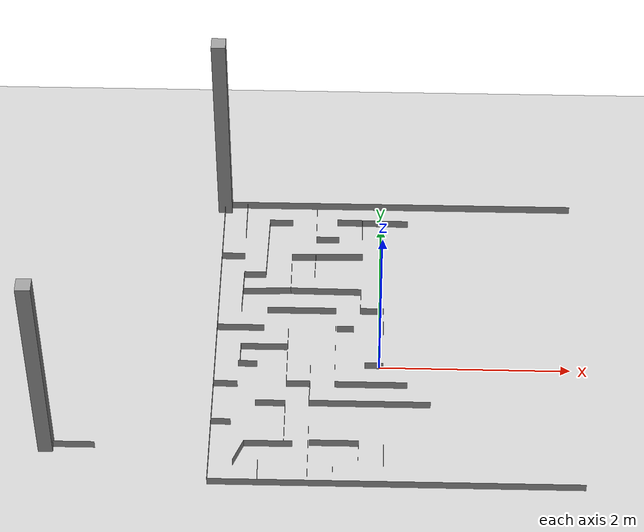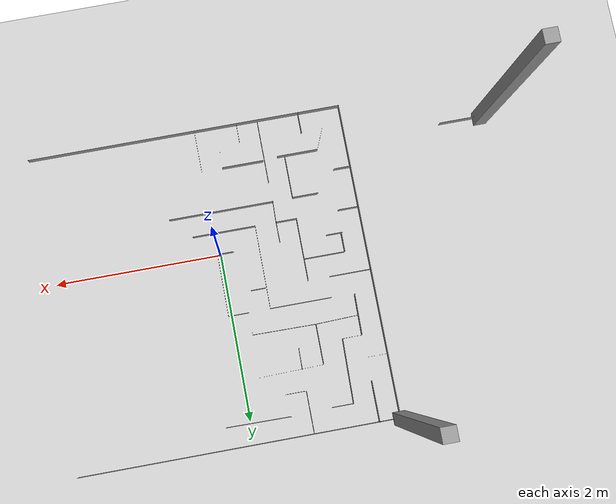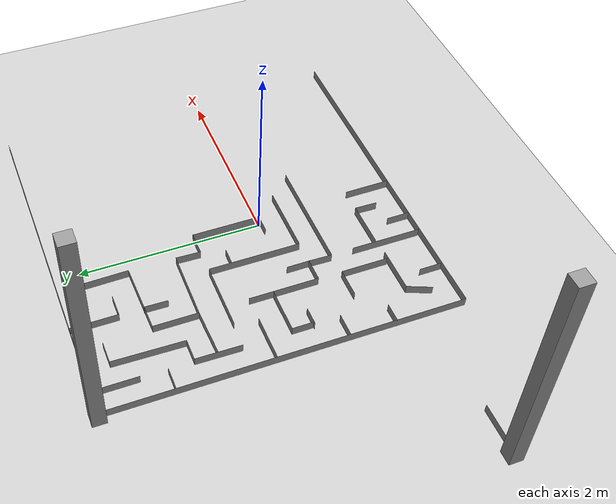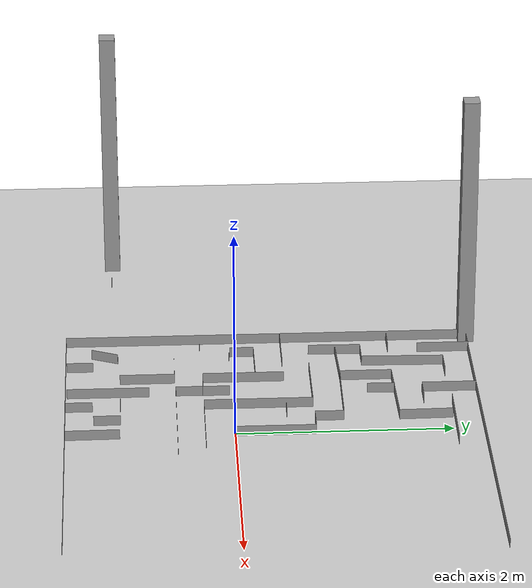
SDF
<sdf version="1.7">
 <world name="default">
  <model name="ground_plane">
   <static>1</static>
   <link name="link">
    <collision name="collision">
     <geometry><plane><normal>0 0 1</normal><size>100 100</size></plane></geometry>
     <surface>
      <contact><collide_bitmask>65535</collide_bitmask></contact>
      <friction><ode><mu>100</mu><mu2>50</mu2></ode></friction>
     </surface>
    </collision>
    <visual name="visual">
     <cast_shadows>0</cast_shadows>
     <geometry><plane><normal>0 0 1</normal><size>100 100</size></plane></geometry>
     <material>
      <script><uri>file://media/materials/scripts/gazebo.material</uri><name>Gazebo/Grey</name></script>
     </material>
    </visual>
   </link>
  </model>
  <model name="Untitled">
   <pose>-0.693629 0.396873 0 0 -0 0</pose>
   <link name="Wall_0">
    <collision name="Wall_0_Collision">
     <geometry><box><size>3.825 0 0.1</size></box></geometry>
     <pose>0 0 0.05 0 -0 0</pose>
    </collision>
    <visual name="Wall_0_Visual">
     <pose>0 0 0.05 0 -0 0</pose>
     <geometry><box><size>3.825 0 0.1</size></box></geometry>
     <material>
      <script><uri>file://media/materials/scripts/gazebo.material</uri><name>Gazebo/Grey</name></script>
      <ambient>1 1 1 1</ambient>
     </material>
     <meta><layer>0</layer></meta>
    </visual>
    <pose>0.872261 -1.94891 0 0 -0 0</pose>
   </link>
   <link name="Wall_115">
    <collision name="Wall_115_Collision">
     <geometry><box><size>0.778287 0 0.1</size></box></geometry>
     <pose>0 0 0.05 0 -0 0</pose>
    </collision>
    <visual name="Wall_115_Visual">
     <pose>0 0 0.05 0 -0 0</pose>
     <geometry><box><size>0.778287 0 0.1</size></box></geometry>
     <material>
      <script><uri>file://media/materials/scripts/gazebo.material</uri><name>Gazebo/Grey</name></script>
      <ambient>1 1 1 1</ambient>
     </material>
     <meta><layer>0</layer></meta>
    </visual>
    <pose>0.600381 1.62631 0 0 -0 3.13002</pose>
   </link>
   <link name="Wall_117">
    <collision name="Wall_117_Collision">
     <geometry><box><size>0.493111 0 0.1</size></box></geometry>
     <pose>0 0 0.05 0 -0 0</pose>
    </collision>
    <visual name="Wall_117_Visual">
     <pose>0 0 0.05 0 -0 0</pose>
     <geometry><box><size>0.493111 0 0.1</size></box></geometry>
     <material>
      <script><uri>file://media/materials/scripts/gazebo.material</uri><name>Gazebo/Grey</name></script>
      <ambient>1 1 1 1</ambient>
     </material>
     <meta><layer>0</layer></meta>
    </visual>
    <pose>0.491881 1.36731 0 0 -0 -1.55254</pose>
   </link>
   <link name="Wall_118">
    <collision name="Wall_118_Collision">
     <geometry><box><size>0.769188 0 0.1</size></box></geometry>
     <pose>0 0 0.05 0 -0 0</pose>
    </collision>
    <visual name="Wall_118_Visual">
     <pose>0 0 0.05 0 -0 0</pose>
     <geometry><box><size>0.769188 0 0.1</size></box></geometry>
     <material>
      <script><uri>file://media/materials/scripts/gazebo.material</uri><name>Gazebo/Grey</name></script>
      <ambient>1 1 1 1</ambient>
     </material>
     <meta><layer>0</layer></meta>
    </visual>
    <pose>0.111881 1.11231 0 0 -0 -3.11949</pose>
   </link>
   <link name="Wall_119">
    <collision name="Wall_119_Collision">
     <geometry><box><size>0.484527 0 0.1</size></box></geometry>
     <pose>0 0 0.05 0 -0 0</pose>
    </collision>
    <visual name="Wall_119_Visual">
     <pose>0 0 0.05 0 -0 0</pose>
     <geometry><box><size>0.484527 0 0.1</size></box></geometry>
     <material>
      <script><uri>file://media/materials/scripts/gazebo.material</uri><name>Gazebo/Grey</name></script>
      <ambient>1 1 1 1</ambient>
     </material>
     <meta><layer>0</layer></meta>
    </visual>
    <pose>-0.272619 0.861312 0 0 -0 -1.5708</pose>
   </link>
   <link name="Wall_120">
    <collision name="Wall_120_Collision">
     <geometry><box><size>0.7605 0 0.1</size></box></geometry>
     <pose>0 0 0.05 0 -0 0</pose>
    </collision>
    <visual name="Wall_120_Visual">
     <pose>0 0 0.05 0 -0 0</pose>
     <geometry><box><size>0.7605 0 0.1</size></box></geometry>
     <material>
      <script><uri>file://media/materials/scripts/gazebo.material</uri><name>Gazebo/Grey</name></script>
      <ambient>1 1 1 1</ambient>
     </material>
     <meta><layer>0</layer></meta>
    </visual>
    <pose>0.107381 0.614812 0 0 -0 -0.010526</pose>
   </link>
   <link name="Wall_121">
    <collision name="Wall_121_Collision">
     <geometry><box><size>0.268341 0 0.1</size></box></geometry>
     <pose>0 0 0.05 0 -0 0</pose>
    </collision>
    <visual name="Wall_121_Visual">
     <pose>0 0 0.05 0 -0 0</pose>
     <geometry><box><size>0.268341 0 0.1</size></box></geometry>
     <material>
      <script><uri>file://media/materials/scripts/gazebo.material</uri><name>Gazebo/Grey</name></script>
      <ambient>1 1 1 1</ambient>
     </material>
     <meta><layer>0</layer></meta>
    </visual>
    <pose>0.483381 0.476812 0 0 -0 -1.60064</pose>
   </link>
   <link name="Wall_122">
    <collision name="Wall_122_Collision">
     <geometry><box><size>0.25056 0 0.1</size></box></geometry>
     <pose>0 0 0.05 0 -0 0</pose>
    </collision>
    <visual name="Wall_122_Visual">
     <pose>0 0 0.05 0 -0 0</pose>
     <geometry><box><size>0.25056 0 0.1</size></box></geometry>
     <material>
      <script><uri>file://media/materials/scripts/gazebo.material</uri><name>Gazebo/Grey</name></script>
      <ambient>1 1 1 1</ambient>
     </material>
     <meta><layer>0</layer></meta>
    </visual>
    <pose>0.604881 0.342812 0 0 -0 0</pose>
   </link>
   <link name="Wall_123">
    <collision name="Wall_123_Collision">
     <geometry><box><size>0.752467 0 0.1</size></box></geometry>
     <pose>0 0 0.05 0 -0 0</pose>
    </collision>
    <visual name="Wall_123_Visual">
     <pose>0 0 0.05 0 -0 0</pose>
     <geometry><box><size>0.752467 0 0.1</size></box></geometry>
     <material>
      <script><uri>file://media/materials/scripts/gazebo.material</uri><name>Gazebo/Grey</name></script>
      <ambient>1 1 1 1</ambient>
     </material>
     <meta><layer>0</layer></meta>
    </visual>
    <pose>0.730381 -0.033188 0 0 -0 -1.5708</pose>
   </link>
   <link name="Wall_125">
    <collision name="Wall_125_Collision">
     <geometry><box><size>0.492984 0 0.1</size></box></geometry>
     <pose>0 0 0.05 0 -0 0</pose>
    </collision>
    <visual name="Wall_125_Visual">
     <pose>0 0 0.05 0 -0 0</pose>
     <geometry><box><size>0.492984 0 0.1</size></box></geometry>
     <material>
      <script><uri>file://media/materials/scripts/gazebo.material</uri><name>Gazebo/Grey</name></script>
      <ambient>1 1 1 1</ambient>
     </material>
     <meta><layer>0</layer></meta>
    </visual>
    <pose>-0.791619 1.63531 0 0 -0 -1.5708</pose>
   </link>
   <link name="Wall_127">
    <collision name="Wall_127_Collision">
     <geometry><box><size>0.250837 0 0.1</size></box></geometry>
     <pose>0 0 0.05 0 -0 0</pose>
    </collision>
    <visual name="Wall_127_Visual">
     <pose>0 0 0.05 0 -0 0</pose>
     <geometry><box><size>0.250837 0 0.1</size></box></geometry>
     <material>
      <script><uri>file://media/materials/scripts/gazebo.material</uri><name>Gazebo/Grey</name></script>
      <ambient>1 1 1 1</ambient>
     </material>
     <meta><layer>0</layer></meta>
    </visual>
    <pose>-0.407119 1.61381 0 0 -0 3.14159</pose>
   </link>
   <link name="Wall_128">
    <collision name="Wall_128_Collision">
     <geometry><box><size>0.769907 0 0.1</size></box></geometry>
     <pose>0 0 0.05 0 -0 0</pose>
    </collision>
    <visual name="Wall_128_Visual">
     <pose>0 0 0.05 0 -0 0</pose>
     <geometry><box><size>0.769907 0 0.1</size></box></geometry>
     <material>
      <script><uri>file://media/materials/scripts/gazebo.material</uri><name>Gazebo/Grey</name></script>
      <ambient>1 1 1 1</ambient>
     </material>
     <meta><layer>0</layer></meta>
    </visual>
    <pose>-0.541119 1.22881 0 0 -0 -1.59287</pose>
   </link>
   <link name="Wall_129">
    <collision name="Wall_129_Collision">
     <geometry><box><size>0.233587 0 0.1</size></box></geometry>
     <pose>0 0 0.05 0 -0 0</pose>
    </collision>
    <visual name="Wall_129_Visual">
     <pose>0 0 0.05 0 -0 0</pose>
     <geometry><box><size>0.233587 0 0.1</size></box></geometry>
     <material>
      <script><uri>file://media/materials/scripts/gazebo.material</uri><name>Gazebo/Grey</name></script>
      <ambient>1 1 1 1</ambient>
     </material>
     <meta><layer>0</layer></meta>
    </visual>
    <pose>-0.666619 0.843812 0 0 -0 3.14159</pose>
   </link>
   <link name="Wall_130">
    <collision name="Wall_130_Collision">
     <geometry><box><size>0.493065 0 0.1</size></box></geometry>
     <pose>0 0 0.05 0 -0 0</pose>
    </collision>
    <visual name="Wall_130_Visual">
     <pose>0 0 0.05 0 -0 0</pose>
     <geometry><box><size>0.493065 0 0.1</size></box></geometry>
     <material>
      <script><uri>file://media/materials/scripts/gazebo.material</uri><name>Gazebo/Grey</name></script>
      <ambient>1 1 1 1</ambient>
     </material>
     <meta><layer>0</layer></meta>
    </visual>
    <pose>-0.787619 0.597312 0 0 -0 -1.58702</pose>
   </link>
   <link name="Wall_132">
    <collision name="Wall_132_Collision">
     <geometry><box><size>0.256182 0 0.1</size></box></geometry>
     <pose>0 0 0.05 0 -0 0</pose>
    </collision>
    <visual name="Wall_132_Visual">
     <pose>0 0 0.05 0 -0 0</pose>
     <geometry><box><size>0.256182 0 0.1</size></box></geometry>
     <material>
      <script><uri>file://media/materials/scripts/gazebo.material</uri><name>Gazebo/Grey</name></script>
      <ambient>1 1 1 1</ambient>
     </material>
     <meta><layer>0</layer></meta>
    </visual>
    <pose>-0.017119 0.985812 0 0 -0 -1.59032</pose>
   </link>
   <link name="Wall_142">
    <collision name="Wall_142_Collision">
     <geometry><box><size>0.510251 0 0.1</size></box></geometry>
     <pose>0 0 0.05 0 -0 0</pose>
    </collision>
    <visual name="Wall_142_Visual">
     <pose>0 0 0.05 0 -0 0</pose>
     <geometry><box><size>0.510251 0 0.1</size></box></geometry>
     <material>
      <script><uri>file://media/materials/scripts/gazebo.material</uri><name>Gazebo/Grey</name></script>
      <ambient>1 1 1 1</ambient>
     </material>
     <meta><layer>0</layer></meta>
    </visual>
    <pose>-0.527619 0.610812 0 0 -0 0.031362</pose>
   </link>
   <link name="Wall_144">
    <collision name="Wall_144_Collision">
     <geometry><box><size>0.759621 0 0.1</size></box></geometry>
     <pose>0 0 0.05 0 -0 0</pose>
    </collision>
    <visual name="Wall_144_Visual">
     <pose>0 0 0.05 0 -0 0</pose>
     <geometry><box><size>0.759621 0 0.1</size></box></geometry>
     <material>
      <script><uri>file://media/materials/scripts/gazebo.material</uri><name>Gazebo/Grey</name></script>
      <ambient>1 1 1 1</ambient>
     </material>
     <meta><layer>0</layer></meta>
    </visual>
    <pose>-0.279619 -0.288188 0 0 -0 -1.5708</pose>
   </link>
   <link name="Wall_147">
    <collision name="Wall_147_Collision">
     <geometry><box><size>0.48877 0 0.1</size></box></geometry>
     <pose>0 0 0.05 0 -0 0</pose>
    </collision>
    <visual name="Wall_147_Visual">
     <pose>0 0 0.05 0 -0 0</pose>
     <geometry><box><size>0.48877 0 0.1</size></box></geometry>
     <material>
      <script><uri>file://media/materials/scripts/gazebo.material</uri><name>Gazebo/Grey</name></script>
      <ambient>1 1 1 1</ambient>
     </material>
     <meta><layer>0</layer></meta>
    </visual>
    <pose>-0.531119 -0.171188 0 0 -0 3.14159</pose>
   </link>
   <link name="Wall_148">
    <collision name="Wall_148_Collision">
     <geometry><box><size>0.225946 0 0.1</size></box></geometry>
     <pose>0 0 0.05 0 -0 0</pose>
    </collision>
    <visual name="Wall_148_Visual">
     <pose>0 0 0.05 0 -0 0</pose>
     <geometry><box><size>0.225946 0 0.1</size></box></geometry>
     <material>
      <script><uri>file://media/materials/scripts/gazebo.material</uri><name>Gazebo/Grey</name></script>
      <ambient>1 1 1 1</ambient>
     </material>
     <meta><layer>0</layer></meta>
    </visual>
    <pose>-0.775619 -0.284188 0 0 -0 -1.5708</pose>
   </link>
   <link name="Wall_150">
    <collision name="Wall_150_Collision">
     <geometry><box><size>0.248586 0 0.1</size></box></geometry>
     <pose>0 0 0.05 0 -0 0</pose>
    </collision>
    <visual name="Wall_150_Visual">
     <pose>0 0 0.05 0 -0 0</pose>
     <geometry><box><size>0.248586 0 0.1</size></box></geometry>
     <material>
      <script><uri>file://media/materials/scripts/gazebo.material</uri><name>Gazebo/Grey</name></script>
      <ambient>1 1 1 1</ambient>
     </material>
     <meta><layer>0</layer></meta>
    </visual>
    <pose>-0.155119 -0.668188 0 0 -0 0</pose>
   </link>
   <link name="Wall_153">
    <collision name="Wall_153_Collision">
     <geometry><box><size>0.248129 0 0.1</size></box></geometry>
     <pose>0 0 0.05 0 -0 0</pose>
    </collision>
    <visual name="Wall_153_Visual">
     <pose>0 0 0.05 0 -0 0</pose>
     <geometry><box><size>0.248129 0 0.1</size></box></geometry>
     <material>
      <script><uri>file://media/materials/scripts/gazebo.material</uri><name>Gazebo/Grey</name></script>
      <ambient>1 1 1 1</ambient>
     </material>
     <meta><layer>0</layer></meta>
    </visual>
    <pose>-0.034619 -0.799188 0 0 -0 -1.60304</pose>
   </link>
   <link name="Wall_154">
    <collision name="Wall_154_Collision">
     <geometry><box><size>1.263 0 0.1</size></box></geometry>
     <pose>0 0 0.05 0 -0 0</pose>
    </collision>
    <visual name="Wall_154_Visual">
     <pose>0 0 0.05 0 -0 0</pose>
     <geometry><box><size>1.263 0 0.1</size></box></geometry>
     <material>
      <script><uri>file://media/materials/scripts/gazebo.material</uri><name>Gazebo/Grey</name></script>
      <ambient>1 1 1 1</ambient>
     </material>
     <meta><layer>0</layer></meta>
    </visual>
    <pose>0.592881 -0.923188 0 0 -0 0</pose>
   </link>
   <link name="Wall_157">
    <collision name="Wall_157_Collision">
     <geometry><box><size>0.737 0 0.1</size></box></geometry>
     <pose>0 0 0.05 0 -0 0</pose>
    </collision>
    <visual name="Wall_157_Visual">
     <pose>0 0 0.05 0 -0 0</pose>
     <geometry><box><size>0.737 0 0.1</size></box></geometry>
     <material>
      <script><uri>file://media/materials/scripts/gazebo.material</uri><name>Gazebo/Grey</name></script>
      <ambient>1 1 1 1</ambient>
     </material>
     <meta><layer>0</layer></meta>
    </visual>
    <pose>-0.144119 0.339812 0 0 -0 0</pose>
   </link>
   <link name="Wall_158">
    <collision name="Wall_158_Collision">
     <geometry><box><size>1.00762 0 0.1</size></box></geometry>
     <pose>0 0 0.05 0 -0 0</pose>
    </collision>
    <visual name="Wall_158_Visual">
     <pose>0 0 0.05 0 -0 0</pose>
     <geometry><box><size>1.00762 0 0.1</size></box></geometry>
     <material>
      <script><uri>file://media/materials/scripts/gazebo.material</uri><name>Gazebo/Grey</name></script>
      <ambient>1 1 1 1</ambient>
     </material>
     <meta><layer>0</layer></meta>
    </visual>
    <pose>0.224381 -0.164188 0 0 -0 -1.5708</pose>
   </link>
   <link name="Wall_159">
    <collision name="Wall_159_Collision">
     <geometry><box><size>0.759616 0 0.1</size></box></geometry>
     <pose>0 0 0.05 0 -0 0</pose>
    </collision>
    <visual name="Wall_159_Visual">
     <pose>0 0 0.05 0 -0 0</pose>
     <geometry><box><size>0.759616 0 0.1</size></box></geometry>
     <material>
      <script><uri>file://media/materials/scripts/gazebo.material</uri><name>Gazebo/Grey</name></script>
      <ambient>1 1 1 1</ambient>
     </material>
     <meta><layer>0</layer></meta>
    </visual>
    <pose>0.604381 -0.668188 0 0 -0 0</pose>
   </link>
   <link name="Wall_16">
    <collision name="Wall_16_Collision">
     <geometry><box><size>0.505 0 0.1</size></box></geometry>
     <pose>0 0 0.05 0 -0 0</pose>
    </collision>
    <visual name="Wall_16_Visual">
     <pose>0 0 0.05 0 -0 0</pose>
     <geometry><box><size>0.505 0 0.1</size></box></geometry>
     <material>
      <script><uri>file://media/materials/scripts/gazebo.material</uri><name>Gazebo/Grey</name></script>
      <ambient>1 1 1 1</ambient>
     </material>
     <meta><layer>0</layer></meta>
    </visual>
    <pose>-0.015163 1.62216 0 0 -0 -1.5708</pose>
   </link>
   <link name="Wall_172">
    <collision name="Wall_172_Collision">
     <geometry><box><size>0.252962 0 0.1</size></box></geometry>
     <pose>0 0 0.05 0 -0 0</pose>
    </collision>
    <visual name="Wall_172_Visual">
     <pose>0 0 0.05 0 -0 0</pose>
     <geometry><box><size>0.252962 0 0.1</size></box></geometry>
     <material>
      <script><uri>file://media/materials/scripts/gazebo.material</uri><name>Gazebo/Grey</name></script>
      <ambient>1 1 1 1</ambient>
     </material>
     <meta><layer>0</layer></meta>
    </visual>
    <pose>-0.031619 -0.548688 0 0 -0 1.5787</pose>
   </link>
   <link name="Wall_174">
    <collision name="Wall_174_Collision">
     <geometry><box><size>0.176052 0 0.1</size></box></geometry>
     <pose>0 0 0.05 0 -0 0</pose>
    </collision>
    <visual name="Wall_174_Visual">
     <pose>0 0 0.05 0 -0 0</pose>
     <geometry><box><size>0.176052 0 0.1</size></box></geometry>
     <material>
      <script><uri>file://media/materials/scripts/gazebo.material</uri><name>Gazebo/Grey</name></script>
      <ambient>1 1 1 1</ambient>
     </material>
     <meta><layer>0</layer></meta>
    </visual>
    <pose>0.324381 0.087812 0 0 -0 0</pose>
   </link>
   <link name="Wall_176">
    <collision name="Wall_176_Collision">
     <geometry><box><size>0.193726 0 0.1</size></box></geometry>
     <pose>0 0 0.05 0 -0 0</pose>
    </collision>
    <visual name="Wall_176_Visual">
     <pose>0 0 0.05 0 -0 0</pose>
     <geometry><box><size>0.193726 0 0.1</size></box></geometry>
     <material>
      <script><uri>file://media/materials/scripts/gazebo.material</uri><name>Gazebo/Grey</name></script>
      <ambient>1 1 1 1</ambient>
     </material>
     <meta><layer>0</layer></meta>
    </visual>
    <pose>0.633381 -0.409188 0 0 -0 3.14159</pose>
   </link>
   <link name="Wall_180">
    <collision name="Wall_180_Collision">
     <geometry><box><size>0.512 0 0.1</size></box></geometry>
     <pose>0 0 0.05 0 -0 0</pose>
    </collision>
    <visual name="Wall_180_Visual">
     <pose>0 0 0.05 0 -0 0</pose>
     <geometry><box><size>0.512 0 0.1</size></box></geometry>
     <material>
      <script><uri>file://media/materials/scripts/gazebo.material</uri><name>Gazebo/Grey</name></script>
      <ambient>1 1 1 1</ambient>
     </material>
     <meta><layer>0</layer></meta>
    </visual>
    <pose>-0.281619 -1.18519 0 0 -0 1.5708</pose>
   </link>
   <link name="Wall_181">
    <collision name="Wall_181_Collision">
     <geometry><box><size>0.312709 0 0.1</size></box></geometry>
     <pose>0 0 0.05 0 -0 0</pose>
    </collision>
    <visual name="Wall_181_Visual">
     <pose>0 0 0.05 0 -0 0</pose>
     <geometry><box><size>0.312709 0 0.1</size></box></geometry>
     <material>
      <script><uri>file://media/materials/scripts/gazebo.material</uri><name>Gazebo/Grey</name></script>
      <ambient>1 1 1 1</ambient>
     </material>
     <meta><layer>0</layer></meta>
    </visual>
    <pose>-0.438119 -0.929188 0 0 -0 3.14159</pose>
   </link>
   <link name="Wall_186">
    <collision name="Wall_186_Collision">
     <geometry><box><size>0.199 0 0.1</size></box></geometry>
     <pose>0 0 0.05 0 -0 0</pose>
    </collision>
    <visual name="Wall_186_Visual">
     <pose>0 0 0.05 0 -0 0</pose>
     <geometry><box><size>0.199 0 0.1</size></box></geometry>
     <material>
      <script><uri>file://media/materials/scripts/gazebo.material</uri><name>Gazebo/Grey</name></script>
      <ambient>1 1 1 1</ambient>
     </material>
     <meta><layer>0</layer></meta>
    </visual>
    <pose>-0.694119 -0.406188 0 0 -0 0</pose>
   </link>
   <link name="Wall_20">
    <collision name="Wall_20_Collision">
     <geometry><box><size>0.25 0 0.1</size></box></geometry>
     <pose>0 0 0.05 0 -0 0</pose>
    </collision>
    <visual name="Wall_20_Visual">
     <pose>0 0 0.05 0 -0 0</pose>
     <geometry><box><size>0.25 0 0.1</size></box></geometry>
     <material>
      <script><uri>file://media/materials/scripts/gazebo.material</uri><name>Gazebo/Grey</name></script>
      <ambient>1 1 1 1</ambient>
     </material>
     <meta><layer>0</layer></meta>
    </visual>
    <pose>0.109837 1.36966 0 0 -0 0</pose>
   </link>
   <link name="Wall_24">
    <collision name="Wall_24_Collision">
     <geometry><box><size>0.15 0.15 2.5</size></box></geometry>
     <pose>0 0 1.25 0 -0 0</pose>
    </collision>
    <visual name="Wall_24_Visual">
     <pose>0 0 1.25 0 -0 0</pose>
     <geometry><box><size>0.15 0.15 2.5</size></box></geometry>
     <material>
      <script><uri>file://media/materials/scripts/gazebo.material</uri><name>Gazebo/Grey</name></script>
      <ambient>1 1 1 1</ambient>
     </material>
     <meta><layer>0</layer></meta>
    </visual>
    <pose>-1.04024 1.87609 0 0 -0 0</pose>
   </link>
   <link name="Wall_27">
    <collision name="Wall_27_Collision">
     <geometry><box><size>0.25 0 0.1</size></box></geometry>
     <pose>0 0 0.05 0 -0 0</pose>
    </collision>
    <visual name="Wall_27_Visual">
     <pose>0 0 0.05 0 -0 0</pose>
     <geometry><box><size>0.25 0 0.1</size></box></geometry>
     <material>
      <script><uri>file://media/materials/scripts/gazebo.material</uri><name>Gazebo/Grey</name></script>
      <ambient>1 1 1 1</ambient>
     </material>
     <meta><layer>0</layer></meta>
    </visual>
    <pose>-0.915574 1.11098 0 0 -0 0</pose>
   </link>
   <link name="Wall_29">
    <collision name="Wall_29_Collision">
     <geometry><box><size>0.495 0 0.1</size></box></geometry>
     <pose>0 0 0.05 0 -0 0</pose>
    </collision>
    <visual name="Wall_29_Visual">
     <pose>0 0 0.05 0 -0 0</pose>
     <geometry><box><size>0.495 0 0.1</size></box></geometry>
     <material>
      <script><uri>file://media/materials/scripts/gazebo.material</uri><name>Gazebo/Grey</name></script>
      <ambient>1 1 1 1</ambient>
     </material>
     <meta><layer>0</layer></meta>
    </visual>
    <pose>-0.789119 0.090812 0 0 -0 0</pose>
   </link>
   <link name="Wall_31">
    <collision name="Wall_31_Collision">
     <geometry><box><size>0.25 0 0.1</size></box></geometry>
     <pose>0 0 0.05 0 -0 0</pose>
    </collision>
    <visual name="Wall_31_Visual">
     <pose>0 0 0.05 0 -0 0</pose>
     <geometry><box><size>0.25 0 0.1</size></box></geometry>
     <material>
      <script><uri>file://media/materials/scripts/gazebo.material</uri><name>Gazebo/Grey</name></script>
      <ambient>1 1 1 1</ambient>
     </material>
     <meta><layer>0</layer></meta>
    </visual>
    <pose>-0.914602 -0.68064 0 0 -0 0</pose>
   </link>
   <link name="Wall_33">
    <collision name="Wall_33_Collision">
     <geometry><box><size>0.205022 0 0.1</size></box></geometry>
     <pose>0 0 0.05 0 -0 0</pose>
    </collision>
    <visual name="Wall_33_Visual">
     <pose>0 0 0.05 0 -0 0</pose>
     <geometry><box><size>0.205022 0 0.1</size></box></geometry>
     <material>
      <script><uri>file://media/materials/scripts/gazebo.material</uri><name>Gazebo/Grey</name></script>
      <ambient>1 1 1 1</ambient>
     </material>
     <meta><layer>0</layer></meta>
    </visual>
    <pose>-0.939119 -1.18319 0 0 -0 0</pose>
   </link>
   <link name="Wall_35">
    <collision name="Wall_35_Collision">
     <geometry><box><size>0.5 0 0.1</size></box></geometry>
     <pose>0 0 0.05 0 -0 0</pose>
    </collision>
    <visual name="Wall_35_Visual">
     <pose>0 0 0.05 0 -0 0</pose>
     <geometry><box><size>0.5 0 0.1</size></box></geometry>
     <material>
      <script><uri>file://media/materials/scripts/gazebo.material</uri><name>Gazebo/Grey</name></script>
      <ambient>1 1 1 1</ambient>
     </material>
     <meta><layer>0</layer></meta>
    </visual>
    <pose>-2.45976 -1.51086 0 0 -0 0</pose>
   </link>
   <link name="Wall_39">
    <collision name="Wall_39_Collision">
     <geometry><box><size>0.15 0.15 2.5</size></box></geometry>
     <pose>0 0 1.25 0 -0 0</pose>
    </collision>
    <visual name="Wall_39_Visual">
     <pose>0 0 1.25 0 -0 0</pose>
     <geometry><box><size>0.15 0.15 2.5</size></box></geometry>
     <material>
      <script><uri>file://media/materials/scripts/gazebo.material</uri><name>Gazebo/Grey</name></script>
      <ambient>1 1 1 1</ambient>
     </material>
     <meta><layer>0</layer></meta>
    </visual>
    <pose>-2.70976 -1.50221 0 0 -0 0</pose>
   </link>
   <link name="Wall_4">
    <collision name="Wall_4_Collision">
     <geometry><box><size>3.825 0 0.1</size></box></geometry>
     <pose>0 0 0.05 0 -0 0</pose>
    </collision>
    <visual name="Wall_4_Visual">
     <pose>0 0 0.05 0 -0 0</pose>
     <geometry><box><size>3.825 0 0.1</size></box></geometry>
     <material>
      <script><uri>file://media/materials/scripts/gazebo.material</uri><name>Gazebo/Grey</name></script>
      <ambient>1 1 1 1</ambient>
     </material>
     <meta><layer>0</layer></meta>
    </visual>
    <pose>0.872261 1.87609 0 0 -0 3.14159</pose>
   </link>
   <link name="Wall_41">
    <collision name="Wall_41_Collision">
     <geometry><box><size>0.245 0 0.1</size></box></geometry>
     <pose>0 0 0.05 0 -0 0</pose>
    </collision>
    <visual name="Wall_41_Visual">
     <pose>0 0 0.05 0 -0 0</pose>
     <geometry><box><size>0.245 0 0.1</size></box></geometry>
     <material>
      <script><uri>file://media/materials/scripts/gazebo.material</uri><name>Gazebo/Grey</name></script>
      <ambient>1 1 1 1</ambient>
     </material>
     <meta><layer>0</layer></meta>
    </visual>
    <pose>-0.535619 -1.81569 0 0 -0 1.5708</pose>
   </link>
   <link name="Wall_43">
    <collision name="Wall_43_Collision">
     <geometry><box><size>0.765 0 0.1</size></box></geometry>
     <pose>0 0 0.05 0 -0 0</pose>
    </collision>
    <visual name="Wall_43_Visual">
     <pose>0 0 0.05 0 -0 0</pose>
     <geometry><box><size>0.765 0 0.1</size></box></geometry>
     <material>
      <script><uri>file://media/materials/scripts/gazebo.material</uri><name>Gazebo/Grey</name></script>
      <ambient>1 1 1 1</ambient>
     </material>
     <meta><layer>0</layer></meta>
    </visual>
    <pose>-0.030888 -1.55255 0 0 -0 1.5708</pose>
   </link>
   <link name="Wall_45">
    <collision name="Wall_45_Collision">
     <geometry><box><size>0.271155 0 0.1</size></box></geometry>
     <pose>0 0 0.05 0 -0 0</pose>
    </collision>
    <visual name="Wall_45_Visual">
     <pose>0 0 0.05 0 -0 0</pose>
     <geometry><box><size>0.271155 0 0.1</size></box></geometry>
     <material>
      <script><uri>file://media/materials/scripts/gazebo.material</uri><name>Gazebo/Grey</name></script>
      <ambient>1 1 1 1</ambient>
     </material>
     <meta><layer>0</layer></meta>
    </visual>
    <pose>-0.740211 -1.58264 0 0 -0 1.17317</pose>
   </link>
   <link name="Wall_48">
    <collision name="Wall_48_Collision">
     <geometry><box><size>0.495 0 0.1</size></box></geometry>
     <pose>0 0 0.05 0 -0 0</pose>
    </collision>
    <visual name="Wall_48_Visual">
     <pose>0 0 0.05 0 -0 0</pose>
     <geometry><box><size>0.495 0 0.1</size></box></geometry>
     <material>
      <script><uri>file://media/materials/scripts/gazebo.material</uri><name>Gazebo/Grey</name></script>
      <ambient>1 1 1 1</ambient>
     </material>
     <meta><layer>0</layer></meta>
    </visual>
    <pose>-0.440211 -1.45764 0 0 -0 3.14159</pose>
   </link>
   <link name="Wall_50">
    <collision name="Wall_50_Collision">
     <geometry><box><size>0.25 0 0.1</size></box></geometry>
     <pose>0 0 0.05 0 -0 0</pose>
    </collision>
    <visual name="Wall_50_Visual">
     <pose>0 0 0.05 0 -0 0</pose>
     <geometry><box><size>0.25 0 0.1</size></box></geometry>
     <material>
      <script><uri>file://media/materials/scripts/gazebo.material</uri><name>Gazebo/Grey</name></script>
      <ambient>1 1 1 1</ambient>
     </material>
     <meta><layer>0</layer></meta>
    </visual>
    <pose>0.2261 -1.82168 0 0 -0 1.5708</pose>
   </link>
   <link name="Wall_52">
    <collision name="Wall_52_Collision">
     <geometry><box><size>0.499025 0 0.1</size></box></geometry>
     <pose>0 0 0.05 0 -0 0</pose>
    </collision>
    <visual name="Wall_52_Visual">
     <pose>0 0 0.05 0 -0 0</pose>
     <geometry><box><size>0.499025 0 0.1</size></box></geometry>
     <material>
      <script><uri>file://media/materials/scripts/gazebo.material</uri><name>Gazebo/Grey</name></script>
      <ambient>1 1 1 1</ambient>
     </material>
     <meta><layer>0</layer></meta>
    </visual>
    <pose>0.742881 -1.69669 0 0 -0 1.58082</pose>
   </link>
   <link name="Wall_6">
    <collision name="Wall_6_Collision">
     <geometry><box><size>3.825 0 0.1</size></box></geometry>
     <pose>0 0 0.05 0 -0 0</pose>
    </collision>
    <visual name="Wall_6_Visual">
     <pose>0 0 0.05 0 -0 0</pose>
     <geometry><box><size>3.825 0 0.1</size></box></geometry>
     <material>
      <script><uri>file://media/materials/scripts/gazebo.material</uri><name>Gazebo/Grey</name></script>
      <ambient>1 1 1 1</ambient>
     </material>
     <meta><layer>0</layer></meta>
    </visual>
    <pose>-1.04024 -0.036406 0 0 -0 -1.5708</pose>
   </link>
   <link name="Wall_65">
    <collision name="Wall_65_Collision">
     <geometry><box><size>0.504 0 0.1</size></box></geometry>
     <pose>0 0 0.05 0 -0 0</pose>
    </collision>
    <visual name="Wall_65_Visual">
     <pose>0 0 0.05 0 -0 0</pose>
     <geometry><box><size>0.504 0 0.1</size></box></geometry>
     <material>
      <script><uri>file://media/materials/scripts/gazebo.material</uri><name>Gazebo/Grey</name></script>
      <ambient>1 1 1 1</ambient>
     </material>
     <meta><layer>0</layer></meta>
    </visual>
    <pose>0.234381 -1.43919 0 0 -0 0</pose>
   </link>
   <link name="Wall_66">
    <collision name="Wall_66_Collision">
     <geometry><box><size>0.247383 0 0.1</size></box></geometry>
     <pose>0 0 0.05 0 -0 0</pose>
    </collision>
    <visual name="Wall_66_Visual">
     <pose>0 0 0.05 0 -0 0</pose>
     <geometry><box><size>0.247383 0 0.1</size></box></geometry>
     <material>
      <script><uri>file://media/materials/scripts/gazebo.material</uri><name>Gazebo/Grey</name></script>
      <ambient>1 1 1 1</ambient>
     </material>
     <meta><layer>0</layer></meta>
    </visual>
    <pose>0.483881 -1.56269 0 0 -0 -1.59104</pose>
   </link>
   <static>1</static>
  </model>
 </world>
</sdf>
